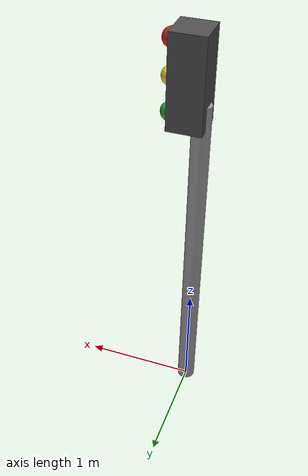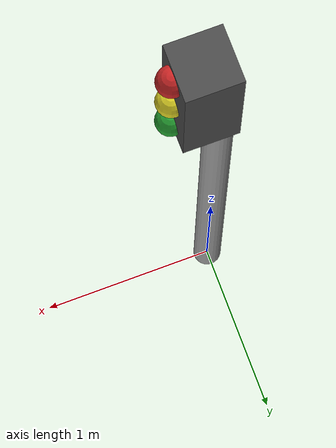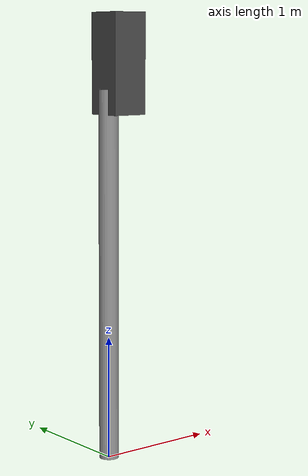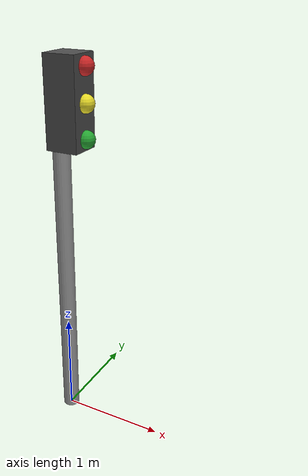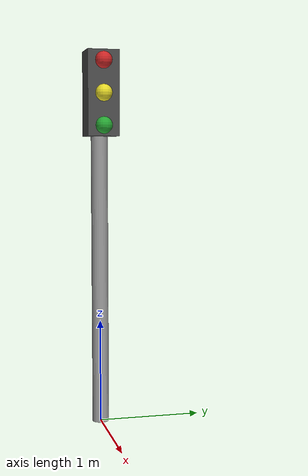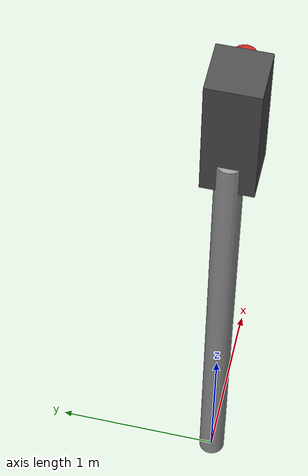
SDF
<?xml version="1.0" ?>
<sdf version="1.6">
  <model name="traffic_light">
    <static>true</static>
    <link name="link">
      <collision name="collision_post">
        <pose>0 0 1.5 0 0 0</pose>
        <geometry>
          <cylinder>
            <radius>0.08</radius>
            <length>3.0</length>
          </cylinder>
        </geometry>
      </collision>
      <visual name="visual_post">
        <pose>0 0 1.5 0 0 0</pose>
        <geometry>
          <cylinder>
            <radius>0.08</radius>
            <length>3.0</length>
          </cylinder>
        </geometry>
        <material>
          <script>
            <uri>file://media/materials/scripts/gazebo.material</uri>
            <name>Gazebo/Grey</name>
          </script>
        </material>
      </visual>
      <visual name="visual_box">
        <pose>0.1 0 3.2 0 0 0</pose>
        <geometry>
          <box>
            <size>0.3 0.3 0.8</size>
          </box>
        </geometry>
        <material>
          <script>
            <uri>file://media/materials/scripts/gazebo.material</uri>
            <name>Gazebo/DarkGrey</name>
          </script>
        </material>
      </visual>
      <visual name="visual_red">
        <pose>0.26 0 3.5 0 0 0</pose>
        <geometry>
          <sphere>
            <radius>0.08</radius>
          </sphere>
        </geometry>
        <material>
          <script>
            <uri>file://media/materials/scripts/gazebo.material</uri>
            <name>Gazebo/Red</name>
          </script>
        </material>
      </visual>
      <visual name="visual_yellow">
        <pose>0.26 0 3.2 0 0 0</pose>
        <geometry>
          <sphere>
            <radius>0.08</radius>
          </sphere>
        </geometry>
        <material>
          <script>
            <uri>file://media/materials/scripts/gazebo.material</uri>
            <name>Gazebo/Yellow</name>
          </script>
        </material>
      </visual>
      <visual name="visual_green">
        <pose>0.26 0 2.9 0 0 0</pose>
        <geometry>
          <sphere>
            <radius>0.08</radius>
          </sphere>
        </geometry>
        <material>
          <script>
            <uri>file://media/materials/scripts/gazebo.material</uri>
            <name>Gazebo/Green</name>
          </script>
        </material>
      </visual>
    </link>
  </model>
</sdf>
